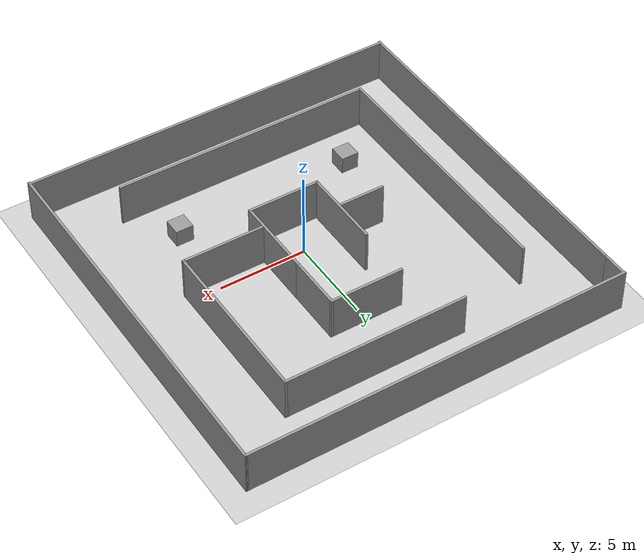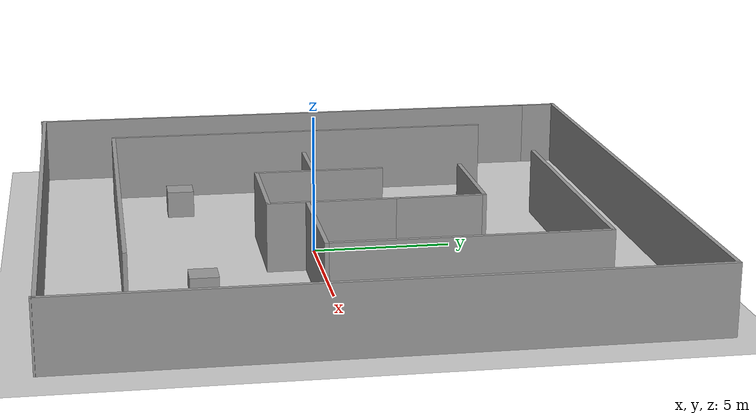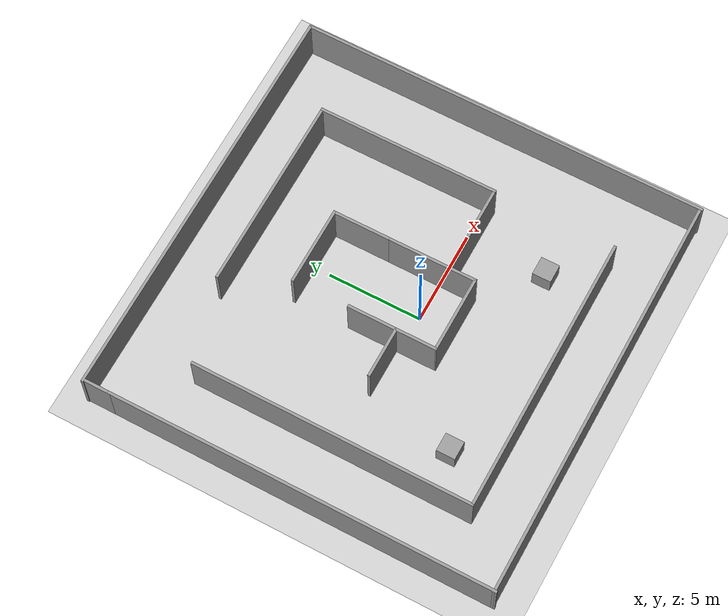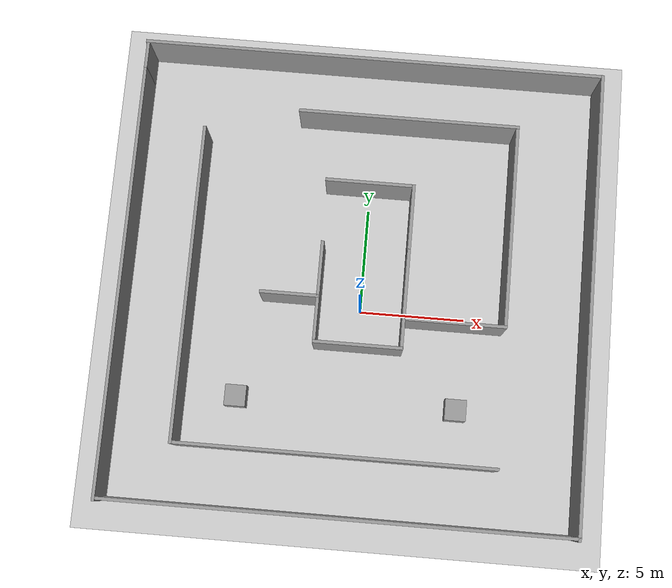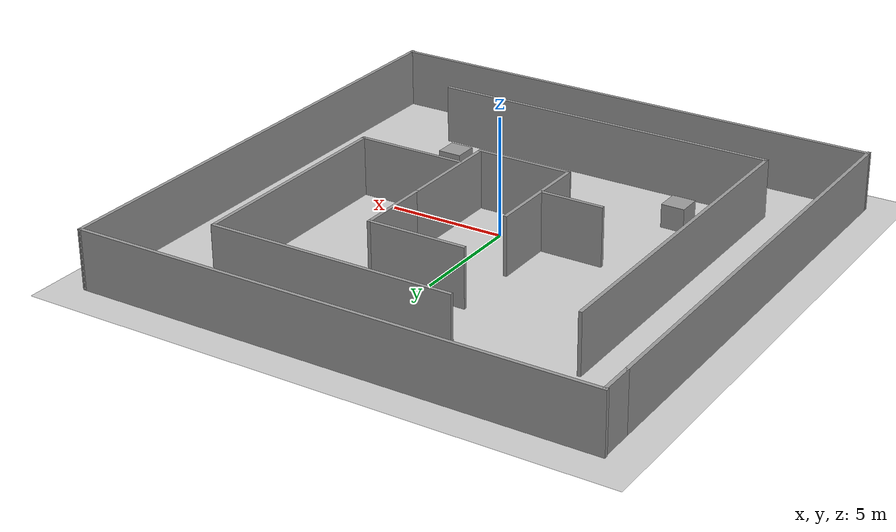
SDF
<sdf version="1.7">
 <world name="default">
  <light name="sun" type="directional">
   <pose>0 0 10 0 -0 0</pose>
   <diffuse>0.8 0.8 0.8 1</diffuse>
   <specular>0.2 0.2 0.2 1</specular>
   <attenuation>
    <range>1000</range>
    <constant>0.9</constant>
    <linear>0.01</linear>
    <quadratic>0.001</quadratic>
   </attenuation>
   <direction>-0.5 0.1 -0.9</direction>
   <spot><inner_angle>0</inner_angle><outer_angle>0</outer_angle><falloff>0</falloff></spot>
  </light>
  <model name="ground_plane">
   <static>1</static>
   <link name="link">
    <collision name="collision">
     <geometry><plane><normal>0 0 1</normal><size>100 100</size></plane></geometry>
     <surface>
      <contact><collide_bitmask>65535</collide_bitmask></contact>
      <friction><ode><mu>100</mu><mu2>50</mu2></ode></friction>
     </surface>
    </collision>
    <visual name="visual">
     <cast_shadows>0</cast_shadows>
     <geometry><plane><normal>0 0 1</normal><size>100 100</size></plane></geometry>
     <material>
      <script><uri>file://media/materials/scripts/gazebo.material</uri><name>Gazebo/Grey</name></script>
     </material>
    </visual>
   </link>
  </model>
  <gravity>0 0 -9.8</gravity>
  <magnetic_field>6e-06 2.3e-05 -4.2e-05</magnetic_field>
  <atmosphere type="adiabatic"/>
  <physics type="ode">
   <max_step_size>0.001</max_step_size>
   <real_time_factor>1</real_time_factor>
   <real_time_update_rate>1000</real_time_update_rate>
  </physics>
  <scene><ambient>0.4 0.4 0.4 1</ambient><background>0.7 0.7 0.7 1</background><shadows>1</shadows></scene>
  <spherical_coordinates>
   <surface_model>EARTH_WGS84</surface_model>
   <latitude_deg>0</latitude_deg>
   <longitude_deg>0</longitude_deg>
   <elevation>0</elevation>
   <heading_deg>0</heading_deg>
  </spherical_coordinates>
  <model name="mapworld2.world">
   <pose>-0.280749 1.06741 0 0 -0 0</pose>
   <link name="Wall_10">
    <collision name="Wall_10_Collision">
     <geometry><box><size>20.5 0.15 2.5</size></box></geometry>
     <pose>0 0 1.25 0 -0 0</pose>
    </collision>
    <visual name="Wall_10_Visual">
     <pose>0 0 1.25 0 -0 0</pose>
     <geometry><box><size>20.5 0.15 2.5</size></box></geometry>
     <material>
      <script><uri>file://media/materials/scripts/gazebo.material</uri><name>Gazebo/Grey</name></script>
      <ambient>1 1 1 1</ambient>
     </material>
     <meta><layer>0</layer></meta>
    </visual>
    <pose>-10.9181 -0.711492 0 0 -0 1.57022</pose>
   </link>
   <link name="Wall_12">
    <collision name="Wall_12_Collision">
     <geometry><box><size>15 0.15 2.5</size></box></geometry>
     <pose>0 0 1.25 0 -0 0</pose>
    </collision>
    <visual name="Wall_12_Visual">
     <pose>0 0 1.25 0 -0 0</pose>
     <geometry><box><size>15 0.15 2.5</size></box></geometry>
     <material>
      <script><uri>file://media/materials/scripts/gazebo.material</uri><name>Gazebo/Grey</name></script>
      <ambient>1 1 1 1</ambient>
     </material>
     <meta><layer>0</layer></meta>
    </visual>
    <pose>-7.7638 -0.635379 0 0 -0 -1.5708</pose>
   </link>
   <link name="Wall_13">
    <collision name="Wall_13_Collision">
     <geometry><box><size>15 0.15 2.5</size></box></geometry>
     <pose>0 0 1.25 0 -0 0</pose>
    </collision>
    <visual name="Wall_13_Visual">
     <pose>0 0 1.25 0 -0 0</pose>
     <geometry><box><size>15 0.15 2.5</size></box></geometry>
     <material>
      <script><uri>file://media/materials/scripts/gazebo.material</uri><name>Gazebo/Grey</name></script>
      <ambient>1 1 1 1</ambient>
     </material>
     <meta><layer>0</layer></meta>
    </visual>
    <pose>-0.338804 -8.06038 0 0 -0 0</pose>
   </link>
   <link name="Wall_16">
    <collision name="Wall_16_Collision">
     <geometry><box><size>4.75 0.15 2.5</size></box></geometry>
     <pose>0 0 1.25 0 -0 0</pose>
    </collision>
    <visual name="Wall_16_Visual">
     <pose>0 0 1.25 0 -0 0</pose>
     <geometry><box><size>4.75 0.15 2.5</size></box></geometry>
     <material>
      <script><uri>file://media/materials/scripts/gazebo.material</uri><name>Gazebo/Grey</name></script>
      <ambient>1 1 1 1</ambient>
     </material>
     <meta><layer>0</layer></meta>
    </visual>
    <pose>-1.6993 -0.585091 0 0 -0 -1.5708</pose>
   </link>
   <link name="Wall_17">
    <collision name="Wall_17_Collision">
     <geometry><box><size>4.19625 0.15 2.5</size></box></geometry>
     <pose>0 0 1.25 0 -0 0</pose>
    </collision>
    <visual name="Wall_17_Visual">
     <pose>0 0 1.25 0 -0 0</pose>
     <geometry><box><size>4.19625 0.15 2.5</size></box></geometry>
     <material>
      <script><uri>file://media/materials/scripts/gazebo.material</uri><name>Gazebo/Grey</name></script>
      <ambient>1 1 1 1</ambient>
     </material>
     <meta><layer>0</layer></meta>
    </visual>
    <pose>0.323829 -2.94662 0 0 -0 0</pose>
   </link>
   <link name="Wall_18">
    <collision name="Wall_18_Collision">
     <geometry><box><size>4.75 0.15 2.5</size></box></geometry>
     <pose>0 0 1.25 0 -0 0</pose>
    </collision>
    <visual name="Wall_18_Visual">
     <pose>0 0 1.25 0 -0 0</pose>
     <geometry><box><size>4.75 0.15 2.5</size></box></geometry>
     <material>
      <script><uri>file://media/materials/scripts/gazebo.material</uri><name>Gazebo/Grey</name></script>
      <ambient>1 1 1 1</ambient>
     </material>
     <meta><layer>0</layer></meta>
    </visual>
    <pose>2.34695 -0.646619 0 0 -0 1.5708</pose>
   </link>
   <link name="Wall_20">
    <collision name="Wall_20_Collision">
     <geometry><box><size>1.5 0.15 2.5</size></box></geometry>
     <pose>0 0 1.25 0 -0 0</pose>
    </collision>
    <visual name="Wall_20_Visual">
     <pose>0 0 1.25 0 -0 0</pose>
     <geometry><box><size>1.5 0.15 2.5</size></box></geometry>
     <material>
      <script><uri>file://media/materials/scripts/gazebo.material</uri><name>Gazebo/Grey</name></script>
      <ambient>1 1 1 1</ambient>
     </material>
     <meta><layer>0</layer></meta>
    </visual>
    <pose>-10.9123 10.1385 0 0 -0 1.5708</pose>
   </link>
   <link name="Wall_42">
    <collision name="Wall_42_Collision">
     <geometry><box><size>2.75 0.15 2.5</size></box></geometry>
     <pose>0 0 1.25 0 -0 0</pose>
    </collision>
    <visual name="Wall_42_Visual">
     <pose>0 0 1.25 0 -0 0</pose>
     <geometry><box><size>2.75 0.15 2.5</size></box></geometry>
     <material>
      <script><uri>file://media/materials/scripts/gazebo.material</uri><name>Gazebo/Grey</name></script>
      <ambient>1 1 1 1</ambient>
     </material>
     <meta><layer>0</layer></meta>
    </visual>
    <pose>-3.04523 -0.82641 0 0 -0 0</pose>
   </link>
   <link name="Wall_44">
    <collision name="Wall_44_Collision">
     <geometry><box><size>3.25 0.15 2.5</size></box></geometry>
     <pose>0 0 1.25 0 -0 0</pose>
    </collision>
    <visual name="Wall_44_Visual">
     <pose>0 0 1.25 0 -0 0</pose>
     <geometry><box><size>3.25 0.15 2.5</size></box></geometry>
     <material>
      <script><uri>file://media/materials/scripts/gazebo.material</uri><name>Gazebo/Grey</name></script>
      <ambient>1 1 1 1</ambient>
     </material>
     <meta><layer>0</layer></meta>
    </visual>
    <pose>2.34695 3.20338 0 0 -0 1.5708</pose>
   </link>
   <link name="Wall_45">
    <collision name="Wall_45_Collision">
     <geometry><box><size>4.25 0.15 2.5</size></box></geometry>
     <pose>0 0 1.25 0 -0 0</pose>
    </collision>
    <visual name="Wall_45_Visual">
     <pose>0 0 1.25 0 -0 0</pose>
     <geometry><box><size>4.25 0.15 2.5</size></box></geometry>
     <material>
      <script><uri>file://media/materials/scripts/gazebo.material</uri><name>Gazebo/Grey</name></script>
      <ambient>1 1 1 1</ambient>
     </material>
     <meta><layer>0</layer></meta>
    </visual>
    <pose>0.296953 4.75338 0 0 -0 3.14159</pose>
   </link>
   <link name="Wall_47">
    <collision name="Wall_47_Collision">
     <geometry><box><size>10.5 0.15 2.5</size></box></geometry>
     <pose>0 0 1.25 0 -0 0</pose>
    </collision>
    <visual name="Wall_47_Visual">
     <pose>0 0 1.25 0 -0 0</pose>
     <geometry><box><size>10.5 0.15 2.5</size></box></geometry>
     <material>
      <script><uri>file://media/materials/scripts/gazebo.material</uri><name>Gazebo/Grey</name></script>
      <ambient>1 1 1 1</ambient>
     </material>
     <meta><layer>0</layer></meta>
    </visual>
    <pose>1.87575 8.0336 0 0 -0 0</pose>
   </link>
   <link name="Wall_48">
    <collision name="Wall_48_Collision">
     <geometry><box><size>9.75 0.15 2.5</size></box></geometry>
     <pose>0 0 1.25 0 -0 0</pose>
    </collision>
    <visual name="Wall_48_Visual">
     <pose>0 0 1.25 0 -0 0</pose>
     <geometry><box><size>9.75 0.15 2.5</size></box></geometry>
     <material>
      <script><uri>file://media/materials/scripts/gazebo.material</uri><name>Gazebo/Grey</name></script>
      <ambient>1 1 1 1</ambient>
     </material>
     <meta><layer>0</layer></meta>
    </visual>
    <pose>7.05075 3.2336 0 0 -0 -1.5708</pose>
   </link>
   <link name="Wall_49">
    <collision name="Wall_49_Collision">
     <geometry><box><size>4.75 0.15 2.5</size></box></geometry>
     <pose>0 0 1.25 0 -0 0</pose>
    </collision>
    <visual name="Wall_49_Visual">
     <pose>0 0 1.25 0 -0 0</pose>
     <geometry><box><size>4.75 0.15 2.5</size></box></geometry>
     <material>
      <script><uri>file://media/materials/scripts/gazebo.material</uri><name>Gazebo/Grey</name></script>
      <ambient>1 1 1 1</ambient>
     </material>
     <meta><layer>0</layer></meta>
    </visual>
    <pose>4.75075 -1.5664 0 0 -0 3.14159</pose>
   </link>
   <link name="Wall_7">
    <collision name="Wall_7_Collision">
     <geometry><box><size>22 0.15 2.5</size></box></geometry>
     <pose>0 0 1.25 0 -0 0</pose>
    </collision>
    <visual name="Wall_7_Visual">
     <pose>0 0 1.25 0 -0 0</pose>
     <geometry><box><size>22 0.15 2.5</size></box></geometry>
     <material>
      <script><uri>file://media/materials/scripts/gazebo.material</uri><name>Gazebo/Grey</name></script>
      <ambient>1 1 1 1</ambient>
     </material>
     <meta><layer>0</layer></meta>
    </visual>
    <pose>-0.030815 10.8865 0 0 -0 0</pose>
   </link>
   <link name="Wall_8">
    <collision name="Wall_8_Collision">
     <geometry><box><size>21.923 0.15 2.5</size></box></geometry>
     <pose>0 0 1.25 0 -0 0</pose>
    </collision>
    <visual name="Wall_8_Visual">
     <pose>0 0 1.25 0 -0 0</pose>
     <geometry><box><size>21.923 0.15 2.5</size></box></geometry>
     <material>
      <script><uri>file://media/materials/scripts/gazebo.material</uri><name>Gazebo/Grey</name></script>
      <ambient>1 1 1 1</ambient>
     </material>
     <meta><layer>0</layer></meta>
    </visual>
    <pose>10.9409 0 0 0 -0 -1.57216</pose>
   </link>
   <link name="Wall_9">
    <collision name="Wall_9_Collision">
     <geometry><box><size>22 0.15 2.5</size></box></geometry>
     <pose>0 0 1.25 0 -0 0</pose>
    </collision>
    <visual name="Wall_9_Visual">
     <pose>0 0 1.25 0 -0 0</pose>
     <geometry><box><size>22 0.15 2.5</size></box></geometry>
     <material>
      <script><uri>file://media/materials/scripts/gazebo.material</uri><name>Gazebo/Grey</name></script>
      <ambient>1 1 1 1</ambient>
     </material>
     <meta><layer>0</layer></meta>
    </visual>
    <pose>0.001046 -10.825 0 0 -0 3.14159</pose>
   </link>
   <static>1</static>
  </model>
  <model name="unit_box">
   <pose>4.84738 -4.37577 0.499995 -1e-05 -0 0</pose>
   <link name="link">
    <inertial>
     <mass>1</mass>
     <inertia>
      <ixx>0.166667</ixx>
      <ixy>0</ixy>
      <ixz>0</ixz>
      <iyy>0.166667</iyy>
      <iyz>0</iyz>
      <izz>0.166667</izz>
     </inertia>
    </inertial>
    <collision name="collision"><geometry><box><size>1 1 1</size></box></geometry></collision>
    <visual name="visual">
     <geometry><box><size>1 1 1</size></box></geometry>
     <material>
      <script><name>Gazebo/Grey</name><uri>file://media/materials/scripts/gazebo.material</uri></script>
     </material>
    </visual>
   </link>
  </model>
  <model name="unit_box_0">
   <pose>-5.48612 -4.53817 0.5 0 -0 0</pose>
   <link name="link">
    <inertial>
     <mass>1</mass>
     <inertia>
      <ixx>0.166667</ixx>
      <ixy>0</ixy>
      <ixz>0</ixz>
      <iyy>0.166667</iyy>
      <iyz>0</iyz>
      <izz>0.166667</izz>
     </inertia>
    </inertial>
    <collision name="collision"><geometry><box><size>1 1 1</size></box></geometry></collision>
    <visual name="visual">
     <geometry><box><size>1 1 1</size></box></geometry>
     <material>
      <script><name>Gazebo/Grey</name><uri>file://media/materials/scripts/gazebo.material</uri></script>
     </material>
    </visual>
   </link>
  </model>
 </world>
</sdf>
